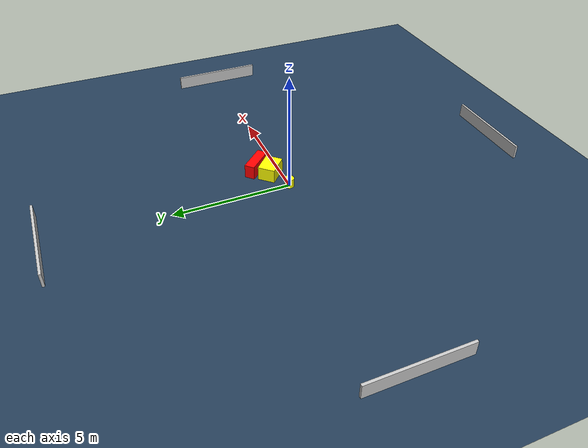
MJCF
<?xml version="1.0" ?>
<mujoco model="generated_environment">
  <option timestep="0.01" integrator="RK4" cone="elliptic"/>
  <default>
    <geom density="1"/>
  </default>
  <asset>
    <texture builtin="gradient" height="3072" name="skybox" rgb1="0.3 0.5 0.7" rgb2="0 0 0" type="skybox" width="512"/>
    <texture builtin="checker" height="300" name="groundplane" rgb1="0.2 0.3 0.4" rgb2="0.1 0.2 0.3" type="2d" width="300"/>
    <material name="groundplane" reflectance="0.2" texrepeat="5 5" texture="groundplane"/>
  </asset>
  <worldbody>
    <light dir="0 0 -1" directional="true" pos="0 0 1.5"/>
    <geom condim="3" friction="0.5 0.005 0.001" material="groundplane" name="floor" pos="0 0 0" size="0 0 0.05" type="plane"/>
    <body name="walls">
      <geom name="wall_1" condim="4" pos="-10.0 0.0 0.3" rgba="0.800000011920929 0.800000011920929 0.800000011920929 1.0" size="0.05 2.0 0.3" type="box"/>
      <geom name="wall_2" condim="4" pos="10.0 0.0 0.3" rgba="0.800000011920929 0.800000011920929 0.800000011920929 1.0" size="0.05 2.0 0.3" type="box"/>
      <geom name="wall_3" condim="4" pos="0.0 -10.0 0.3" rgba="0.800000011920929 0.800000011920929 0.800000011920929 1.0" size="2.0 0.05 0.3" type="box"/>
      <geom name="wall_4" condim="4" pos="0.0 10.0 0.3" rgba="0.800000011920929 0.800000011920929 0.800000011920929 1.0" size="2.0 0.05 0.3" type="box"/>
    </body>
    <body name="robot">
      <joint name="joint_x" type="slide" pos="0 0 0" axis="1 0 0"/>
      <joint name="joint_y" type="slide" pos="0 0 0" axis="0 1 0"/>
      <geom name="robot" type="cylinder" pos="0.0 0.0 0.2" size="0.2 0.2 0.0" mass="5.0" friction="1.0 0.005 0.0001" condim="4" rgba="1.0 1.0 0.0 1.0"/>
    </body>
    <body name="obstacle_1_movable">
      <geom name="obstacle_1_movable" condim="4" pos="1.0279124564756548 0.4479959832301467 0.3" euler="0 0 47.147436663683806" friction="0.0 0.005 0.001" rgba="1.0 1.0 0.0 1.0" size="0.3674982847844442 0.48219811939415824 0.3" type="box" mass="0.1"/>
      <joint type="free"/>
    </body>
    <body name="obstacle_2_static">
      <geom name="obstacle_2_static" condim="4" pos="1.5693600356336723 0.8884697393509201 0.3" euler="0 0 223.32726555413828" friction="0.0 0.005 0.001" rgba="1.0 0.0 0.0 1.0" size="0.21749850443452956 0.6325715043195519 0.3" type="box"/>
    </body>
  </worldbody>
  <actuator>
    <motor name="actuator_x" joint="joint_x" gear="1" ctrlrange="-1 1"/>
    <motor name="actuator_y" joint="joint_y" gear="1" ctrlrange="-1 1"/>
  </actuator>
</mujoco>
